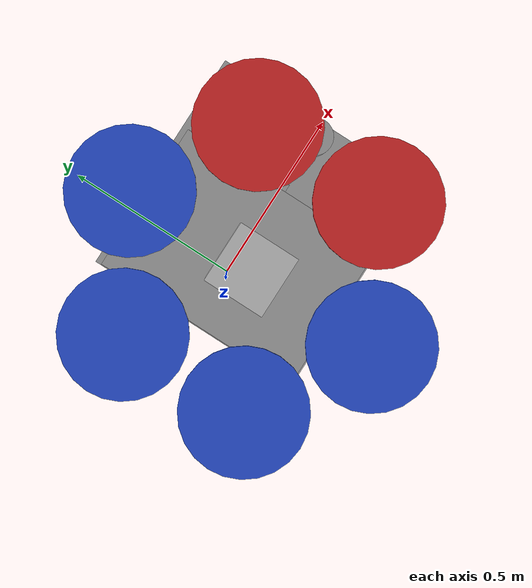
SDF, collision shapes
<?xml version="1.0" ?>
<sdf version="1.7">
  <model name="tether_marsupial">
    <self_collide>true</self_collide>

    <include>
      <uri>model://arco</uri>
      <pose>0.16 0 0.0 0 0 0</pose>
    </include>

    <include>
      <uri>model://firefly</uri>
      <pose>0.08 0 1.48 0 0 0</pose>
    </include>

  </model>
</sdf>

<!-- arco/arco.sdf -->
<sdf version='1.7'>

  <model name='arco'>

    <link name='base_link'>
      <inertial>
        <mass>20</mass>
        <inertia>
          <ixx>0.273333</ixx>
          <ixy>0</ixy>
          <ixz>0</ixz>
          <iyy>0.758667</iyy>
          <iyz>0</iyz>
          <izz>0.966667</izz>
        </inertia>
        <pose>0 0 0 0 -0 0</pose>
      </inertial>
      <self_collide>1</self_collide>
      <enable_wind>0</enable_wind>
      <kinematic>0</kinematic>
      <pose>0 0 0 0 -0 0</pose>
      <gravity>1</gravity>
      <visual name='visual'>
        <geometry>
          <box>
            <size>0.66 0.38 0.14</size>
          </box>
        </geometry>
        <material>
          <script>
            <name>Gazebo/Grey</name>
            <uri>file://media/materials/scripts/gazebo.material</uri>
          </script>
          <shader type='pixel'>
            <normal_map>__default__</normal_map>
          </shader>
          <ambient>1 1 1 1</ambient>
          <diffuse>0.7 0.7 0.7 1</diffuse>
          <specular>0.01 0.01 0.01 1</specular>
          <emissive>0 0 0 1</emissive>
        </material>
        <pose>0 0 0 0 -0 0</pose>
        <transparency>0</transparency>
        <cast_shadows>1</cast_shadows>
      </visual>
      <collision name='collision'>
        <laser_retro>0</laser_retro>
        <max_contacts>10</max_contacts>
        <pose>0 0 0 0 -0 0</pose>
        <geometry>
          <box>
            <size>0.66 0.38 0.14</size>
          </box>
        </geometry>
        <surface>
          <friction>
            <ode>
              <mu>1</mu>
              <mu2>1</mu2>
              <fdir1>0 0 0</fdir1>
              <slip1>0</slip1>
              <slip2>0</slip2>
            </ode>
            <torsional>
              <coefficient>1</coefficient>
              <patch_radius>0</patch_radius>
              <surface_radius>0</surface_radius>
              <use_patch_radius>1</use_patch_radius>
              <ode>
                <slip>0</slip>
              </ode>
            </torsional>
          </friction>
          <bounce>
            <restitution_coefficient>0</restitution_coefficient>
            <threshold>1e+06</threshold>
          </bounce>
          <contact>
            <collide_without_contact>0</collide_without_contact>
            <collide_without_contact_bitmask>1</collide_without_contact_bitmask>
            <collide_bitmask>1</collide_bitmask>
            <ode>
              <soft_cfm>0</soft_cfm>
              <soft_erp>0.2</soft_erp>
              <kp>1e+13</kp>
              <kd>1</kd>
              <max_vel>0.01</max_vel>
              <min_depth>0</min_depth>
            </ode>
            <bullet>
              <split_impulse>1</split_impulse>
              <split_impulse_penetration_threshold>-0.01</split_impulse_penetration_threshold>
              <soft_cfm>0</soft_cfm>
              <soft_erp>0.2</soft_erp>
              <kp>1e+13</kp>
              <kd>1</kd>
            </bullet>
          </contact>
        </surface>
      </collision>

      <collision name='imu_collision'>
        <pose>0.12 0 0.09 0 -0 0</pose>
        <geometry>
          <box>
            <size>0.031 0.031 0.01</size>
          </box>
        </geometry>
        <surface>
          <contact>
            <ode/>
          </contact>
          <friction>
            <ode/>
          </friction>
        </surface>
      </collision>
      <collision name='os1_sensor_collision'>
        <pose>0.2795 0 0.12 0 -0 0</pose>
        <geometry>
          <cylinder>
            <length>0.0717</length>
            <radius>0.0516</radius>
          </cylinder>
        </geometry>
      </collision>
      <visual name='imu_visual'>
        <pose>0.12 0 0.09 0 -0 0</pose>
        <geometry>
          <mesh>
            <scale>0.001 0.001 0.001</scale>
            <uri>model://arco/meshes/razor_imu/razor_imu.stl</uri>
          </mesh>
        </geometry>
        <material>
          <script>
            <name>Gazebo/Red</name>
            <uri>file://media/materials/scripts/gazebo.material</uri>
          </script>
        </material>
      </visual>
      <visual name='os1_sensor_base_link_1'>
        <pose>0.2795 0 0.08 0 -0 0</pose>
        <geometry>
          <mesh>
            <scale>1 1 1</scale>
            <uri>model://arco/meshes/VLP16/VLP16_base_1.dae</uri>
          </mesh>
        </geometry>
      </visual>
      <visual name='os1_sensor_base_link_visual_2'>
        <pose>0.2795 0 0.08 -0 0</pose>
        <geometry>
          <mesh>
            <scale>1 1 1</scale>
            <uri>model://arco/meshes/VLP16/VLP16_base_2.dae</uri>
          </mesh>
        </geometry>
      </visual>
      <visual name='os1_sensor_visual_3'>
        <pose>0.2795 0 0.08 0 -0 0</pose>
        <geometry>
          <mesh>
            <scale>1 1 1</scale>
            <uri>model://arco/meshes/VLP16/VLP16_scan.dae</uri>
          </mesh>
        </geometry>
      </visual>

      <sensor name='imu_sensor' type='imu'>
        <always_on>1</always_on>
        <update_rate>50</update_rate>
        <visualize>1</visualize>
        <topic>__default_topic__</topic>
        <pose>0.12 0 0.1428 0 -0 0</pose>
      </sensor>
      <sensor name='os1_sensor-VLP16' type='ray'>
        <visualize>0</visualize>
        <update_rate>10</update_rate>
        <ray>
          <scan>
            <horizontal>
              <samples>1875</samples>
              <resolution>1</resolution>
              <min_angle>-3.14159</min_angle>
              <max_angle>3.14159</max_angle>
            </horizontal>
            <vertical>
              <samples>16</samples>
              <resolution>1</resolution>
              <min_angle>-0.261799</min_angle>
              <max_angle>0.261799</max_angle>
            </vertical>
          </scan>
          <range>
            <min>0.3</min>
            <max>40</max>
            <resolution>0.001</resolution>
          </range>
          <noise>
            <type>gaussian</type>
            <mean>0</mean>
            <stddev>0</stddev>
          </noise>
        </ray>
        <pose>0.2795 0 0.1791 0 -0 0</pose>
      </sensor>
    </link>
    <link name='front_right'>
      <inertial>
        <mass>0.5</mass>
        <inertia>
          <ixx>0.00104176</ixx>
          <ixy>0</ixy>
          <ixz>0</ixz>
          <iyy>0.00104176</iyy>
          <iyz>0</iyz>
          <izz>0.001225</izz>
        </inertia>
        <pose>0 0 0 0 -0 0</pose>
      </inertial>
      <pose>0.21 0.247 -0.06 1.57 0 0</pose>
      <gravity>1</gravity>
      <self_collide>1</self_collide>
      <kinematic>0</kinematic>
      <enable_wind>0</enable_wind>
      <visual name='visual'>
        <pose>0 0 0 1.57 -0 0</pose>
        <geometry>
          <mesh>
            <scale>0.002 0.002 0.002</scale>
            <uri>model://arco/meshes/mecanum/mecanum_wheel_left.STL</uri>
          </mesh>
        </geometry>
        <material>
          <lighting>1</lighting>
          <script>
            <name>Gazebo/Orange</name>
            <uri>file://media/materials/scripts/gazebo.material</uri>
          </script>
          <shader type='pixel'>
            <normal_map>__default__</normal_map>
          </shader>
        </material>
        <transparency>0</transparency>
        <cast_shadows>1</cast_shadows>
      </visual>
      <collision name='collision'>
        <laser_retro>0</laser_retro>
        <max_contacts>10</max_contacts>
        <pose>0 0 0 0 -0 0</pose>
        <geometry>
          <cylinder>
            <radius>0.1015</radius>
            <length>0.07</length>
          </cylinder>
        </geometry>
        <surface>
          <friction>
            <ode>
              <mu>1</mu>
              <mu2>1</mu2>
              <fdir1>0 0 0</fdir1>
              <slip1>0</slip1>
              <slip2>0</slip2>
            </ode>
            <torsional>
              <coefficient>1</coefficient>
              <patch_radius>0</patch_radius>
              <surface_radius>0</surface_radius>
              <use_patch_radius>1</use_patch_radius>
              <ode>
                <slip>0</slip>
              </ode>
            </torsional>
          </friction>
          <bounce>
            <restitution_coefficient>0</restitution_coefficient>
            <threshold>1e+06</threshold>
          </bounce>
          <contact>
            <collide_without_contact>0</collide_without_contact>
            <collide_without_contact_bitmask>1</collide_without_contact_bitmask>
            <collide_bitmask>1</collide_bitmask>
            <ode>
              <soft_cfm>0</soft_cfm>
              <soft_erp>0.2</soft_erp>
              <kp>1e+13</kp>
              <kd>1</kd>
              <max_vel>0.01</max_vel>
              <min_depth>0</min_depth>
            </ode>
            <bullet>
              <split_impulse>1</split_impulse>
              <split_impulse_penetration_threshold>-0.01</split_impulse_penetration_threshold>
              <soft_cfm>0</soft_cfm>
              <soft_erp>0.2</soft_erp>
              <kp>1e+13</kp>
              <kd>1</kd>
            </bullet>
          </contact>
        </surface>
      </collision>
    </link>
    <link name='rear_right'>
      <inertial>
        <mass>0.5</mass>
        <inertia>
          <ixx>0.00104176</ixx>
          <ixy>0</ixy>
          <ixz>0</ixz>
          <iyy>0.00104176</iyy>
          <iyz>0</iyz>
          <izz>0.001225</izz>
        </inertia>
        <pose>0 0 0 0 -0 0</pose>
      </inertial>
      <pose>-0.21 0.247 -0.06 1.57 -0 0</pose>
      <gravity>1</gravity>
      <self_collide>1</self_collide>
      <kinematic>0</kinematic>
      <enable_wind>0</enable_wind>
      <visual name='visual'>
        <pose>0 0 0 1.57 -0 0</pose>
        <geometry>
         <mesh>
            <scale>0.002 0.002 0.002</scale>
            <uri>model://arco/meshes/mecanum/mecanum_wheel_left.STL</uri>
          </mesh>
        </geometry>
        <material>
          <lighting>1</lighting>
          <script>
            <name>Gazebo/Orange</name>
            <uri>file://media/materials/scripts/gazebo.material</uri>
          </script>
          <shader type='pixel'>
            <normal_map>__default__</normal_map>
          </shader>
        </material>
        <transparency>0</transparency>
        <cast_shadows>1</cast_shadows>
      </visual>
      <collision name='collision'>
        <laser_retro>0</laser_retro>
        <max_contacts>10</max_contacts>
        <pose>0 0 0 0 -0 0</pose>
        <geometry>
          <cylinder>
            <radius>0.1015</radius>
            <length>0.07</length>
          </cylinder>
        </geometry>
        <surface>
          <friction>
            <ode>
              <mu>1</mu>
              <mu2>1</mu2>
              <fdir1>0 0 0</fdir1>
              <slip1>0</slip1>
              <slip2>0</slip2>
            </ode>
            <torsional>
              <coefficient>1</coefficient>
              <patch_radius>0</patch_radius>
              <surface_radius>0</surface_radius>
              <use_patch_radius>1</use_patch_radius>
              <ode>
                <slip>0</slip>
              </ode>
            </torsional>
          </friction>
          <bounce>
            <restitution_coefficient>0</restitution_coefficient>
            <threshold>1e+06</threshold>
          </bounce>
          <contact>
            <collide_without_contact>0</collide_without_contact>
            <collide_without_contact_bitmask>1</collide_without_contact_bitmask>
            <collide_bitmask>1</collide_bitmask>
            <ode>
              <soft_cfm>0</soft_cfm>
              <soft_erp>0.2</soft_erp>
              <kp>1e+13</kp>
              <kd>1</kd>
              <max_vel>0.01</max_vel>
              <min_depth>0</min_depth>
            </ode>
            <bullet>
              <split_impulse>1</split_impulse>
              <split_impulse_penetration_threshold>-0.01</split_impulse_penetration_threshold>
              <soft_cfm>0</soft_cfm>
              <soft_erp>0.2</soft_erp>
              <kp>1e+13</kp>
              <kd>1</kd>
            </bullet>
          </contact>
        </surface>
      </collision>
    </link>
    <link name='front_left'>
      <inertial>
        <mass>0.5</mass>
        <inertia>
          <ixx>0.00104176</ixx>
          <ixy>0</ixy>
          <ixz>0</ixz>
          <iyy>0.00104176</iyy>
          <iyz>0</iyz>
          <izz>0.001225</izz>
        </inertia>
        <pose>0 0 0 0 -0 0</pose>
      </inertial>
      <pose>0.21 -0.247 -0.06 1.57 -0 0</pose>
      <gravity>1</gravity>
      <self_collide>1</self_collide>
      <kinematic>0</kinematic>
      <enable_wind>0</enable_wind>
      <visual name='visual'>
        <pose>0 0 0 1.57 -0 0</pose>
        <geometry>
          <mesh>
            <scale>0.002 0.002 0.002</scale>
            <uri>model://arco/meshes/mecanum/mecanum_wheel_left.STL</uri>
          </mesh>
        </geometry>
        <material>
          <lighting>1</lighting>
          <script>
            <name>Gazebo/Orange</name>
            <uri>file://media/materials/scripts/gazebo.material</uri>
          </script>
          <shader type='pixel'>
            <normal_map>__default__</normal_map>
          </shader>
        </material>
        <transparency>0</transparency>
        <cast_shadows>1</cast_shadows>
      </visual>
      <collision name='collision'>
        <laser_retro>0</laser_retro>
        <max_contacts>10</max_contacts>
        <pose>0 0 0 0 -0 0</pose>
        <geometry>
          <cylinder>
            <radius>0.1015</radius>
            <length>0.07</length>
          </cylinder>
        </geometry>
        <surface>
          <friction>
            <ode>
              <mu>1</mu>
              <mu2>1</mu2>
              <fdir1>0 0 0</fdir1>
              <slip1>0</slip1>
              <slip2>0</slip2>
            </ode>
            <torsional>
              <coefficient>1</coefficient>
              <patch_radius>0</patch_radius>
              <surface_radius>0</surface_radius>
              <use_patch_radius>1</use_patch_radius>
              <ode>
                <slip>0</slip>
              </ode>
            </torsional>
          </friction>
          <bounce>
            <restitution_coefficient>0</restitution_coefficient>
            <threshold>1e+06</threshold>
          </bounce>
          <contact>
            <collide_without_contact>0</collide_without_contact>
            <collide_without_contact_bitmask>1</collide_without_contact_bitmask>
            <collide_bitmask>1</collide_bitmask>
            <ode>
              <soft_cfm>0</soft_cfm>
              <soft_erp>0.2</soft_erp>
              <kp>1e+13</kp>
              <kd>1</kd>
              <max_vel>0.01</max_vel>
              <min_depth>0</min_depth>
            </ode>
            <bullet>
              <split_impulse>1</split_impulse>
              <split_impulse_penetration_threshold>-0.01</split_impulse_penetration_threshold>
              <soft_cfm>0</soft_cfm>
              <soft_erp>0.2</soft_erp>
              <kp>1e+13</kp>
              <kd>1</kd>
            </bullet>
          </contact>
        </surface>
      </collision>
    </link>
    <link name='rear_left'>
      <inertial>
        <mass>0.5</mass>
        <inertia>
          <ixx>0.00104176</ixx>
          <ixy>0</ixy>
          <ixz>0</ixz>
          <iyy>0.00104176</iyy>
          <iyz>0</iyz>
          <izz>0.001225</izz>
        </inertia>
        <pose>0 0 0 1.57 -0 0</pose>
      </inertial>
      <pose>-0.21 -0.247 -0.06 1.57 -0 0</pose>
      <gravity>1</gravity>
      <self_collide>1</self_collide>
      <kinematic>0</kinematic>
      <enable_wind>0</enable_wind>
      <visual name='visual'>
        <pose>0 0 0 1.57 -0 0</pose>
        <geometry>
          <mesh>
            <scale>0.002 0.002 0.002</scale>
            <uri>model://arco/meshes/mecanum/mecanum_wheel_left.STL</uri>
          </mesh>
        </geometry>
        <material>
          <lighting>1</lighting>
          <script>
            <name>Gazebo/Orange</name>
            <uri>file://media/materials/scripts/gazebo.material</uri>
          </script>
          <shader type='pixel'>
            <normal_map>__default__</normal_map>
          </shader>
        </material>
        <transparency>0</transparency>
        <cast_shadows>1</cast_shadows>
      </visual>
      <collision name='collision'>
        <laser_retro>0</laser_retro>
        <max_contacts>10</max_contacts>
        <pose>0 0 0 0 -0 0</pose>
        <geometry>
          <cylinder>
            <radius>0.1015</radius>
            <length>0.07</length>
          </cylinder>
        </geometry>
        <surface>
          <friction>
            <ode>
              <mu>1</mu>
              <mu2>1</mu2>
              <fdir1>0 0 0</fdir1>
              <slip1>0</slip1>
              <slip2>0</slip2>
            </ode>
            <torsional>
              <coefficient>1</coefficient>
              <patch_radius>0</patch_radius>
              <surface_radius>0</surface_radius>
              <use_patch_radius>1</use_patch_radius>
              <ode>
                <slip>0</slip>
              </ode>
            </torsional>
          </friction>
          <bounce>
            <restitution_coefficient>0</restitution_coefficient>
            <threshold>1e+06</threshold>
          </bounce>
          <contact>
            <collide_without_contact>0</collide_without_contact>
            <collide_without_contact_bitmask>1</collide_without_contact_bitmask>
            <collide_bitmask>1</collide_bitmask>
            <ode>
              <soft_cfm>0</soft_cfm>
              <soft_erp>0.2</soft_erp>
              <kp>1e+13</kp>
              <kd>1</kd>
              <max_vel>0.01</max_vel>
              <min_depth>0</min_depth>
            </ode>
            <bullet>
              <split_impulse>1</split_impulse>
              <split_impulse_penetration_threshold>-0.01</split_impulse_penetration_threshold>
              <soft_cfm>0</soft_cfm>
              <soft_erp>0.2</soft_erp>
              <kp>1e+13</kp>
              <kd>1</kd>
            </bullet>
          </contact>
        </surface>
      </collision>
    </link>
    <link name='base_cover'>
      <inertial>
        <mass>1</mass>
        <inertia>
          <ixx>0.0341417</ixx>
          <ixy>0</ixy>
          <ixz>0</ixz>
          <iyy>0.0363083</iyy>
          <iyz>0</iyz>
          <izz>0.0704333</izz>
        </inertia>
        <pose>0 0 0 0 -0 0</pose>
      </inertial>
      <self_collide>1</self_collide>
      <enable_wind>0</enable_wind>
      <kinematic>0</kinematic>
      <pose>-0 0 0.075 0 -0 0</pose>
      <gravity>1</gravity>
      <visual name='visual'>
        <geometry>
          <box>
            <size>0.66 0.64 0.01</size>
          </box>
        </geometry>
        <material>
          <script>
            <name>Gazebo/Gray</name>
            <uri>file://media/materials/scripts/gazebo.material</uri>
          </script>
          <shader type='pixel'>
            <normal_map>__default__</normal_map>
          </shader>
          <ambient>1 1 1 1</ambient>
          <diffuse>0.7 0.7 0.7 1</diffuse>
          <specular>0.01 0.01 0.01 1</specular>
          <emissive>0 0 0 1</emissive>
        </material>
        <pose>0 0 0 0 -0 0</pose>
        <transparency>0</transparency>
        <cast_shadows>1</cast_shadows>
      </visual>
      <collision name='collision'>
        <laser_retro>0</laser_retro>
        <max_contacts>10</max_contacts>
        <pose>0 0 0 0 -0 0</pose>
        <geometry>
          <box>
            <size>0.66 0.64 0.01</size>
          </box>
        </geometry>
        <surface>
          <friction>
            <ode>
              <mu>1</mu>
              <mu2>1</mu2>
              <fdir1>0 0 0</fdir1>
              <slip1>0</slip1>
              <slip2>0</slip2>
            </ode>
            <torsional>
              <coefficient>1</coefficient>
              <patch_radius>0</patch_radius>
              <surface_radius>0</surface_radius>
              <use_patch_radius>1</use_patch_radius>
              <ode>
                <slip>0</slip>
              </ode>
            </torsional>
          </friction>
          <bounce>
            <restitution_coefficient>0</restitution_coefficient>
            <threshold>1e+06</threshold>
          </bounce>
          <contact>
            <collide_without_contact>0</collide_without_contact>
            <collide_without_contact_bitmask>1</collide_without_contact_bitmask>
            <collide_bitmask>1</collide_bitmask>
            <ode>
              <soft_cfm>0</soft_cfm>
              <soft_erp>0.2</soft_erp>
              <kp>1e+13</kp>
              <kd>1</kd>
              <max_vel>0.01</max_vel>
              <min_depth>0</min_depth>
            </ode>
            <bullet>
              <split_impulse>1</split_impulse>
              <split_impulse_penetration_threshold>-0.01</split_impulse_penetration_threshold>
              <soft_cfm>0</soft_cfm>
              <soft_erp>0.2</soft_erp>
              <kp>1e+13</kp>
              <kd>1</kd>
            </bullet>
          </contact>
        </surface>
      </collision>
    </link>
    <link name='base_platform'>
      <inertial>
        <mass>10</mass>
        <inertia>
          <ixx>0.336333</ixx>
          <ixy>0</ixy>
          <ixz>0</ixz>
          <iyy>0.208333</iyy>
          <iyz>0</iyz>
          <izz>0.394667</izz>
        </inertia>
        <pose>0 0 0 0 -0 0</pose>
      </inertial>
      <self_collide>1</self_collide>
      <enable_wind>0</enable_wind>
      <kinematic>0</kinematic>
      <pose>-0.1 -0 0.23 0 -0 0</pose>
      <gravity>1</gravity>
      <visual name='visual'>
        <geometry>
          <box>
            <size>0.4 0.56 0.3</size>
          </box>
        </geometry>
        <material>
          <script>
            <name>Gazebo/Gray</name>
            <uri>file://media/materials/scripts/gazebo.material</uri>
          </script>
          <shader type='pixel'>
            <normal_map>__default__</normal_map>
          </shader>
          <ambient>0.5 0.5 0.5 1</ambient>
          <diffuse>0.7 0.7 0.7 1</diffuse>
          <specular>0.01 0.01 0.01 1</specular>
          <emissive>0 0 0 1</emissive>
        </material>
        <pose>0 0 0 0 -0 0</pose>
        <transparency>0</transparency>
        <cast_shadows>1</cast_shadows>
      </visual>
      <collision name='collision'>
        <laser_retro>0</laser_retro>
        <max_contacts>10</max_contacts>
        <pose>0 0 0 0 -0 0</pose>
        <geometry>
          <box>
            <size>0.4 0.56 0.3</size>
          </box>
        </geometry>
        <surface>
          <friction>
            <ode>
              <mu>1</mu>
              <mu2>1</mu2>
              <fdir1>0 0 0</fdir1>
              <slip1>0</slip1>
              <slip2>0</slip2>
            </ode>
            <torsional>
              <coefficient>1</coefficient>
              <patch_radius>0</patch_radius>
              <surface_radius>0</surface_radius>
              <use_patch_radius>1</use_patch_radius>
              <ode>
                <slip>0</slip>
              </ode>
            </torsional>
          </friction>
          <bounce>
            <restitution_coefficient>0</restitution_coefficient>
            <threshold>1e+06</threshold>
          </bounce>
          <contact>
            <collide_without_contact>0</collide_without_contact>
            <collide_without_contact_bitmask>1</collide_without_contact_bitmask>
            <collide_bitmask>1</collide_bitmask>
            <ode>
              <soft_cfm>0</soft_cfm>
              <soft_erp>0.2</soft_erp>
              <kp>1e+13</kp>
              <kd>1</kd>
              <max_vel>0.01</max_vel>
              <min_depth>0</min_depth>
            </ode>
            <bullet>
              <split_impulse>1</split_impulse>
              <split_impulse_penetration_threshold>-0.01</split_impulse_penetration_threshold>
              <soft_cfm>0</soft_cfm>
              <soft_erp>0.2</soft_erp>
              <kp>1e+13</kp>
              <kd>1</kd>
            </bullet>
          </contact>
        </surface>
      </collision>
    </link>
    <joint name='link_JOINT_2' type='fixed'>
      <parent>base_link</parent>
      <child>base_cover</child>
      <pose>0 0 0 0 -0 0</pose>
      <physics>
        <ode>
          <limit>
            <cfm>0</cfm>
            <erp>0.2</erp>
          </limit>
          <suspension>
            <cfm>0</cfm>
            <erp>0.2</erp>
          </suspension>
        </ode>
      </physics>
    </joint>
    <joint name='link_JOINT_3' type='fixed'>
      <parent>base_cover</parent>
      <child>base_platform</child>
      <pose>0 0 0 0 -0 0</pose>
      <physics>
        <ode>
          <limit>
            <cfm>0</cfm>
            <erp>0.2</erp>
          </limit>
          <suspension>
            <cfm>0</cfm>
            <erp>0.2</erp>
          </suspension>
        </ode>
      </physics>
    </joint>
    <joint name='link_JOINT_4' type='revolute'>
      <parent>base_link</parent>
      <child>front_right</child>
      <pose>0 0 0.035 0 -0 0</pose>
      <axis>
        <xyz>0 0 1</xyz>
        <limit>
          <lower>-1.79769e+308</lower>
          <upper>1.79769e+308</upper>
          <effort>-1</effort>
          <velocity>-1</velocity>
        </limit>
        <dynamics>
          <spring_reference>0</spring_reference>
          <spring_stiffness>0</spring_stiffness>
          <damping>0</damping>
        </dynamics>
      </axis>
      <physics>
        <ode>
          <limit>
            <cfm>0</cfm>
            <erp>0.2</erp>
          </limit>
          <suspension>
            <cfm>0</cfm>
            <erp>0.2</erp>
          </suspension>
        </ode>
      </physics>
    </joint>
    <joint name='link_JOINT_5' type='revolute'>
      <parent>base_link</parent>
      <child>rear_right</child>
      <pose>0 0 0.035 0 -0 0</pose>
      <axis>
        <xyz>0 0 1</xyz>
        <limit>
          <lower>-1.79769e+308</lower>
          <upper>1.79769e+308</upper>
          <effort>-1</effort>
          <velocity>-1</velocity>
        </limit>
        <dynamics>
          <spring_reference>0</spring_reference>
          <spring_stiffness>0</spring_stiffness>
          <damping>0</damping>
        </dynamics>
      </axis>
      <physics>
        <ode>
          <limit>
            <cfm>0</cfm>
            <erp>0.2</erp>
          </limit>
          <suspension>
            <cfm>0</cfm>
            <erp>0.2</erp>
          </suspension>
        </ode>
      </physics>
    </joint>
    <joint name='link_JOINT_6' type='revolute'>
      <parent>base_link</parent>
      <child>front_left</child>
      <pose>0 0 -0.035 0 -0 0</pose>
      <axis>
        <xyz>0 0 1</xyz>
        <limit>
          <lower>-1.79769e+308</lower>
          <upper>1.79769e+308</upper>
          <effort>-1</effort>
          <velocity>-1</velocity>
        </limit>
        <dynamics>
          <spring_reference>0</spring_reference>
          <spring_stiffness>0</spring_stiffness>
          <damping>0</damping>
        </dynamics>
      </axis>
      <physics>
        <ode>
          <limit>
            <cfm>0</cfm>
            <erp>0.2</erp>
          </limit>
          <suspension>
            <cfm>0</cfm>
            <erp>0.2</erp>
          </suspension>
        </ode>
      </physics>
    </joint>
    <joint name='link_JOINT_7' type='revolute'>
      <parent>base_link</parent>
      <child>rear_left</child>
      <pose>0 0 -0.035 0 -0 0</pose>
      <axis>
        <xyz>0 0 1</xyz>
        <limit>
          <lower>-1.79769e+308</lower>
          <upper>1.79769e+308</upper>
          <effort>-1</effort>
          <velocity>-1</velocity>
        </limit>
        <dynamics>
          <spring_reference>0</spring_reference>
          <spring_stiffness>0</spring_stiffness>
          <damping>0</damping>
        </dynamics>
      </axis>
      <physics>
        <ode>
          <limit>
            <cfm>0</cfm>
            <erp>0.2</erp>
          </limit>
          <suspension>
            <cfm>0</cfm>
            <erp>0.2</erp>
          </suspension>
        </ode>
      </physics>
    </joint>

    <static>0</static>
    <allow_auto_disable>1</allow_auto_disable>

  </model>
</sdf>

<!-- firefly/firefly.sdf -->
<sdf version='1.7'>
  <model name='firefly'>
    <link name='firefly/base_link'>
      <inertial>
        <pose>0 0 -0.000242 0 -0 0</pose>
        <mass>1.52</mass>
        <inertia>
          <ixx>0.0347717</ixx>
          <ixy>0</ixy>
          <ixz>0</ixz>
          <iyy>0.0459083</iyy>
          <iyz>0</iyz>
          <izz>0.097702</izz>
        </inertia>
      </inertial>
      <collision name='firefly/base_link_inertia_collision'>
        <pose>0 0 0 0 -0 0</pose>
        <geometry>
          <box>
            <size>0.1 0.1 0.16</size>
          </box>
        </geometry>
      </collision>
      <visual name='firefly/base_link_inertia_visual'>
        <pose>0 0 0 0 -0 0</pose>
        <geometry>
          <mesh>
            <scale>1 1 1</scale>
            <uri>model://firefly/meshes//firefly.dae</uri>
          </mesh>
        </geometry>
      </visual>
      <sensor name='laser_scan' type='ray'>
        <visualize>0</visualize>
        <update_rate>10</update_rate>
        <ray>
          <scan>
            <horizontal>
              <samples>512</samples>
              <resolution>1</resolution>
              <min_angle>-3.14159</min_angle>
              <max_angle>3.14159</max_angle>
            </horizontal>
            <vertical>
              <samples>16</samples>
              <resolution>1</resolution>
              <min_angle>-0.289725</min_angle>
              <max_angle>0.289725</max_angle>
            </vertical>
          </scan>
          <range>
            <min>0.8</min>
            <max>120</max>
            <resolution>0.012</resolution>
          </range>
          <noise>
            <type>gaussian</type>
            <mean>0</mean>
            <stddev>0</stddev>
          </noise>
        </ray>
        <plugin name='fireflygazebo_ros_laser_controller' filename='libgazebo_ros_velodyne_laser.so'>
          <topicName>/firefly/os1_cloud_node/points</topicName>
          <frameName>/firefly/os1_sensor</frameName>
          <min_range>0.8</min_range>
          <max_range>40.0</max_range>
          <gaussianNoise>0.03</gaussianNoise>
        </plugin>
        <pose>0 0 -0.036785 0 -0 0</pose>
      </sensor>
    </link>
    <joint name='firefly/imu_joint' type='revolute'>
      <pose relative_to='firefly/base_link'>0 0 0 0 -0 0</pose>
      <parent>firefly/base_link</parent>
      <child>firefly/imu_link</child>
      <axis>
        <xyz>1 0 0</xyz>
        <limit>
          <lower>0</lower>
          <upper>0</upper>
          <effort>0</effort>
          <velocity>0</velocity>
        </limit>
        <dynamics>
          <spring_reference>0</spring_reference>
          <spring_stiffness>0</spring_stiffness>
        </dynamics>
      </axis>
    </joint>
    <link name='firefly/imu_link'>
      <pose relative_to='firefly/imu_joint'>0 0 0 0 -0 0</pose>
      <inertial>
        <pose>0 0 0 0 -0 0</pose>
        <mass>0.015</mass>
        <inertia>
          <ixx>1e-05</ixx>
          <ixy>0</ixy>
          <ixz>0</ixz>
          <iyy>1e-05</iyy>
          <iyz>0</iyz>
          <izz>1e-05</izz>
        </inertia>
      </inertial>
    </link>
    <joint name='firefly/odometry_sensor1_joint' type='revolute'>
      <pose relative_to='firefly/base_link'>0 0 0 0 -0 0</pose>
      <parent>firefly/base_link</parent>
      <child>firefly/odometry_sensor1_link</child>
      <axis>
        <xyz>1 0 0</xyz>
        <limit>
          <lower>0</lower>
          <upper>0</upper>
          <effort>0</effort>
          <velocity>0</velocity>
        </limit>
        <dynamics>
          <spring_reference>0</spring_reference>
          <spring_stiffness>0</spring_stiffness>
        </dynamics>
      </axis>
    </joint>
    <link name='firefly/odometry_sensor1_link'>
      <pose relative_to='firefly/odometry_sensor1_joint'>0 0 0 0 -0 0</pose>
      <inertial>
        <pose>0 0 0 0 -0 0</pose>
        <mass>1e-05</mass>
        <inertia>
          <ixx>1e-05</ixx>
          <ixy>0</ixy>
          <ixz>0</ixz>
          <iyy>1e-05</iyy>
          <iyz>0</iyz>
          <izz>1e-05</izz>
        </inertia>
      </inertial>
    </link>
    <joint name='firefly/rotor_0_joint' type='revolute'>
      <pose relative_to='firefly/base_link'>0.186195 0.1075 0.037 0 -0 0</pose>
      <parent>firefly/base_link</parent>
      <child>firefly/rotor_0</child>
      <axis>
        <xyz>0 0 1</xyz>
        <limit>
          <lower>-1e+16</lower>
          <upper>1e+16</upper>
        </limit>
        <dynamics>
          <spring_reference>0</spring_reference>
          <spring_stiffness>0</spring_stiffness>
        </dynamics>
      </axis>
    </joint>
    <link name='firefly/rotor_0'>
      <pose relative_to='firefly/rotor_0_joint'>0 0 0 0 -0 0</pose>
      <inertial>
        <pose>0 0 0 0 -0 0</pose>
        <mass>0.005</mass>
        <inertia>
          <ixx>9.75e-07</ixx>
          <ixy>0</ixy>
          <ixz>0</ixz>
          <iyy>4.17041e-05</iyy>
          <iyz>0</iyz>
          <izz>4.26041e-05</izz>
        </inertia>
      </inertial>
      <collision name='firefly/rotor_0_collision'>
        <pose>0 0 0 0 -0 0</pose>
        <geometry>
          <cylinder>
            <length>0.005</length>
            <radius>0.1</radius>
          </cylinder>
        </geometry>
        <surface>
          <contact>
            <ode/>
          </contact>
          <friction>
            <ode/>
          </friction>
        </surface>
      </collision>
      <visual name='firefly/rotor_0_visual'>
        <pose>0 0 0 0 -0 0</pose>
        <geometry>
          <mesh>
            <scale>0.1 0.1 0.1</scale>
            <uri>model://firefly/meshes//propeller_ccw.dae</uri>
          </mesh>
        </geometry>
        <material>
          <script>
            <name>Gazebo/Red</name>
            <uri>file://media/materials/scripts/gazebo.material</uri>
          </script>
        </material>
      </visual>
    </link>
    <joint name='firefly/rotor_1_joint' type='revolute'>
      <pose relative_to='firefly/base_link'>0 0.215 0.037 0 -0 0</pose>
      <parent>firefly/base_link</parent>
      <child>firefly/rotor_1</child>
      <axis>
        <xyz>0 0 1</xyz>
        <limit>
          <lower>-1e+16</lower>
          <upper>1e+16</upper>
        </limit>
        <dynamics>
          <spring_reference>0</spring_reference>
          <spring_stiffness>0</spring_stiffness>
        </dynamics>
      </axis>
    </joint>
    <link name='firefly/rotor_1'>
      <pose relative_to='firefly/rotor_1_joint'>0 0 0 0 -0 0</pose>
      <inertial>
        <pose>0 0 0 0 -0 0</pose>
        <mass>0.005</mass>
        <inertia>
          <ixx>9.75e-07</ixx>
          <ixy>0</ixy>
          <ixz>0</ixz>
          <iyy>4.17041e-05</iyy>
          <iyz>0</iyz>
          <izz>4.26041e-05</izz>
        </inertia>
      </inertial>
      <collision name='firefly/rotor_1_collision'>
        <pose>0 0 0 0 -0 0</pose>
        <geometry>
          <cylinder>
            <length>0.005</length>
            <radius>0.1</radius>
          </cylinder>
        </geometry>
        <surface>
          <contact>
            <ode/>
          </contact>
          <friction>
            <ode/>
          </friction>
        </surface>
      </collision>
      <visual name='firefly/rotor_1_visual'>
        <pose>0 0 0 0 -0 0</pose>
        <geometry>
          <mesh>
            <scale>0.1 0.1 0.1</scale>
            <uri>model://firefly/meshes//propeller_cw.dae</uri>
          </mesh>
        </geometry>
        <material>
          <script>
            <name>Gazebo/Blue</name>
            <uri>file://media/materials/scripts/gazebo.material</uri>
          </script>
        </material>
      </visual>
    </link>
    <joint name='firefly/rotor_2_joint' type='revolute'>
      <pose relative_to='firefly/base_link'>-0.186195 0.1075 0.037 0 -0 0</pose>
      <parent>firefly/base_link</parent>
      <child>firefly/rotor_2</child>
      <axis>
        <xyz>0 0 1</xyz>
        <limit>
          <lower>-1e+16</lower>
          <upper>1e+16</upper>
        </limit>
        <dynamics>
          <spring_reference>0</spring_reference>
          <spring_stiffness>0</spring_stiffness>
        </dynamics>
      </axis>
    </joint>
    <link name='firefly/rotor_2'>
      <pose relative_to='firefly/rotor_2_joint'>0 0 0 0 -0 0</pose>
      <inertial>
        <pose>0 0 0 0 -0 0</pose>
        <mass>0.005</mass>
        <inertia>
          <ixx>9.75e-07</ixx>
          <ixy>0</ixy>
          <ixz>0</ixz>
          <iyy>4.17041e-05</iyy>
          <iyz>0</iyz>
          <izz>4.26041e-05</izz>
        </inertia>
      </inertial>
      <collision name='firefly/rotor_2_collision'>
        <pose>0 0 0 0 -0 0</pose>
        <geometry>
          <cylinder>
            <length>0.005</length>
            <radius>0.1</radius>
          </cylinder>
        </geometry>
        <surface>
          <contact>
            <ode/>
          </contact>
          <friction>
            <ode/>
          </friction>
        </surface>
      </collision>
      <visual name='firefly/rotor_2_visual'>
        <pose>0 0 0 0 -0 0</pose>
        <geometry>
          <mesh>
            <scale>0.1 0.1 0.1</scale>
            <uri>model://firefly/meshes//propeller_ccw.dae</uri>
          </mesh>
        </geometry>
        <material>
          <script>
            <name>Gazebo/Blue</name>
            <uri>file://media/materials/scripts/gazebo.material</uri>
          </script>
        </material>
      </visual>
    </link>
    <joint name='firefly/rotor_3_joint' type='revolute'>
      <pose relative_to='firefly/base_link'>-0.186195 -0.1075 0.037 0 -0 0</pose>
      <parent>firefly/base_link</parent>
      <child>firefly/rotor_3</child>
      <axis>
        <xyz>0 0 1</xyz>
        <limit>
          <lower>-1e+16</lower>
          <upper>1e+16</upper>
        </limit>
        <dynamics>
          <spring_reference>0</spring_reference>
          <spring_stiffness>0</spring_stiffness>
        </dynamics>
      </axis>
    </joint>
    <link name='firefly/rotor_3'>
      <pose relative_to='firefly/rotor_3_joint'>0 0 0 0 -0 0</pose>
      <inertial>
        <pose>0 0 0 0 -0 0</pose>
        <mass>0.005</mass>
        <inertia>
          <ixx>9.75e-07</ixx>
          <ixy>0</ixy>
          <ixz>0</ixz>
          <iyy>4.17041e-05</iyy>
          <iyz>0</iyz>
          <izz>4.26041e-05</izz>
        </inertia>
      </inertial>
      <collision name='firefly/rotor_3_collision'>
        <pose>0 0 0 0 -0 0</pose>
        <geometry>
          <cylinder>
            <length>0.005</length>
            <radius>0.1</radius>
          </cylinder>
        </geometry>
        <surface>
          <contact>
            <ode/>
          </contact>
          <friction>
            <ode/>
          </friction>
        </surface>
      </collision>
      <visual name='firefly/rotor_3_visual'>
        <pose>0 0 0 0 -0 0</pose>
        <geometry>
          <mesh>
            <scale>0.1 0.1 0.1</scale>
            <uri>model://firefly/meshes//propeller_cw.dae</uri>
          </mesh>
        </geometry>
        <material>
          <script>
            <name>Gazebo/Blue</name>
            <uri>file://media/materials/scripts/gazebo.material</uri>
          </script>
        </material>
      </visual>
    </link>
    <joint name='firefly/rotor_4_joint' type='revolute'>
      <pose relative_to='firefly/base_link'>0 -0.215 0.037 0 -0 0</pose>
      <parent>firefly/base_link</parent>
      <child>firefly/rotor_4</child>
      <axis>
        <xyz>0 0 1</xyz>
        <limit>
          <lower>-1e+16</lower>
          <upper>1e+16</upper>
        </limit>
        <dynamics>
          <spring_reference>0</spring_reference>
          <spring_stiffness>0</spring_stiffness>
        </dynamics>
      </axis>
    </joint>
    <link name='firefly/rotor_4'>
      <pose relative_to='firefly/rotor_4_joint'>0 0 0 0 -0 0</pose>
      <inertial>
        <pose>0 0 0 0 -0 0</pose>
        <mass>0.005</mass>
        <inertia>
          <ixx>9.75e-07</ixx>
          <ixy>0</ixy>
          <ixz>0</ixz>
          <iyy>4.17041e-05</iyy>
          <iyz>0</iyz>
          <izz>4.26041e-05</izz>
        </inertia>
      </inertial>
      <collision name='firefly/rotor_4_collision'>
        <pose>0 0 0 0 -0 0</pose>
        <geometry>
          <cylinder>
            <length>0.005</length>
            <radius>0.1</radius>
          </cylinder>
        </geometry>
        <surface>
          <contact>
            <ode/>
          </contact>
          <friction>
            <ode/>
          </friction>
        </surface>
      </collision>
      <visual name='firefly/rotor_4_visual'>
        <pose>0 0 0 0 -0 0</pose>
        <geometry>
          <mesh>
            <scale>0.1 0.1 0.1</scale>
            <uri>model://firefly/meshes//propeller_ccw.dae</uri>
          </mesh>
        </geometry>
        <material>
          <script>
            <name>Gazebo/Blue</name>
            <uri>file://media/materials/scripts/gazebo.material</uri>
          </script>
        </material>
      </visual>
    </link>
    <joint name='firefly/rotor_5_joint' type='revolute'>
      <pose relative_to='firefly/base_link'>0.186195 -0.1075 0.037 0 -0 0</pose>
      <parent>firefly/base_link</parent>
      <child>firefly/rotor_5</child>
      <axis>
        <xyz>0 0 1</xyz>
        <limit>
          <lower>-1e+16</lower>
          <upper>1e+16</upper>
        </limit>
        <dynamics>
          <spring_reference>0</spring_reference>
          <spring_stiffness>0</spring_stiffness>
        </dynamics>
      </axis>
    </joint>
    <link name='firefly/rotor_5'>
      <pose relative_to='firefly/rotor_5_joint'>0 0 0 0 -0 0</pose>
      <inertial>
        <pose>0 0 0 0 -0 0</pose>
        <mass>0.005</mass>
        <inertia>
          <ixx>9.75e-07</ixx>
          <ixy>0</ixy>
          <ixz>0</ixz>
          <iyy>4.17041e-05</iyy>
          <iyz>0</iyz>
          <izz>4.26041e-05</izz>
        </inertia>
      </inertial>
      <collision name='firefly/rotor_5_collision'>
        <pose>0 0 0 0 -0 0</pose>
        <geometry>
          <cylinder>
            <length>0.005</length>
            <radius>0.1</radius>
          </cylinder>
        </geometry>
        <surface>
          <contact>
            <ode/>
          </contact>
          <friction>
            <ode/>
          </friction>
        </surface>
      </collision>
      <visual name='firefly/rotor_5_visual'>
        <pose>0 0 0 0 -0 0</pose>
        <geometry>
          <mesh>
            <scale>0.1 0.1 0.1</scale>
            <uri>model://firefly/meshes//propeller_cw.dae</uri>
          </mesh>
        </geometry>
        <material>
          <script>
            <name>Gazebo/Red</name>
            <uri>file://media/materials/scripts/gazebo.material</uri>
          </script>
        </material>
      </visual>
    </link>
    <plugin name='multirotor_base_plugin' filename='librotors_gazebo_multirotor_base_plugin.so'>
      <robotNamespace>firefly</robotNamespace>
      <linkName>firefly/base_link</linkName>
      <rotorVelocitySlowdownSim>10</rotorVelocitySlowdownSim>
    </plugin>
    <plugin name='firefly_front_left_motor_model' filename='librotors_gazebo_motor_model.so'>
      <robotNamespace>firefly</robotNamespace>
      <jointName>firefly/rotor_0_joint</jointName>
      <linkName>firefly/rotor_0</linkName>
      <turningDirection>ccw</turningDirection>
      <timeConstantUp>0.0125</timeConstantUp>
      <timeConstantDown>0.025</timeConstantDown>
      <maxRotVelocity>838</maxRotVelocity>
      <motorConstant>8.54858e-06</motorConstant>
      <momentConstant>0.016</momentConstant>
      <commandSubTopic>gazebo/command/motor_speed</commandSubTopic>
      <motorNumber>0</motorNumber>
      <rotorDragCoefficient>8.06428e-05</rotorDragCoefficient>
      <rollingMomentCoefficient>1e-06</rollingMomentCoefficient>
      <motorSpeedPubTopic>motor_speed/0</motorSpeedPubTopic>
      <rotorVelocitySlowdownSim>10</rotorVelocitySlowdownSim>
    </plugin>
    <plugin name='firefly_left_motor_model' filename='librotors_gazebo_motor_model.so'>
      <robotNamespace>firefly</robotNamespace>
      <jointName>firefly/rotor_1_joint</jointName>
      <linkName>firefly/rotor_1</linkName>
      <turningDirection>cw</turningDirection>
      <timeConstantUp>0.0125</timeConstantUp>
      <timeConstantDown>0.025</timeConstantDown>
      <maxRotVelocity>838</maxRotVelocity>
      <motorConstant>8.54858e-06</motorConstant>
      <momentConstant>0.016</momentConstant>
      <commandSubTopic>gazebo/command/motor_speed</commandSubTopic>
      <motorNumber>1</motorNumber>
      <rotorDragCoefficient>8.06428e-05</rotorDragCoefficient>
      <rollingMomentCoefficient>1e-06</rollingMomentCoefficient>
      <motorSpeedPubTopic>motor_speed/1</motorSpeedPubTopic>
      <rotorVelocitySlowdownSim>10</rotorVelocitySlowdownSim>
    </plugin>
    <plugin name='firefly_back_left_motor_model' filename='librotors_gazebo_motor_model.so'>
      <robotNamespace>firefly</robotNamespace>
      <jointName>firefly/rotor_2_joint</jointName>
      <linkName>firefly/rotor_2</linkName>
      <turningDirection>ccw</turningDirection>
      <timeConstantUp>0.0125</timeConstantUp>
      <timeConstantDown>0.025</timeConstantDown>
      <maxRotVelocity>838</maxRotVelocity>
      <motorConstant>8.54858e-06</motorConstant>
      <momentConstant>0.016</momentConstant>
      <commandSubTopic>gazebo/command/motor_speed</commandSubTopic>
      <motorNumber>2</motorNumber>
      <rotorDragCoefficient>8.06428e-05</rotorDragCoefficient>
      <rollingMomentCoefficient>1e-06</rollingMomentCoefficient>
      <motorSpeedPubTopic>motor_speed/2</motorSpeedPubTopic>
      <rotorVelocitySlowdownSim>10</rotorVelocitySlowdownSim>
    </plugin>
    <plugin name='firefly_back_right_motor_model' filename='librotors_gazebo_motor_model.so'>
      <robotNamespace>firefly</robotNamespace>
      <jointName>firefly/rotor_3_joint</jointName>
      <linkName>firefly/rotor_3</linkName>
      <turningDirection>cw</turningDirection>
      <timeConstantUp>0.0125</timeConstantUp>
      <timeConstantDown>0.025</timeConstantDown>
      <maxRotVelocity>838</maxRotVelocity>
      <motorConstant>8.54858e-06</motorConstant>
      <momentConstant>0.016</momentConstant>
      <commandSubTopic>gazebo/command/motor_speed</commandSubTopic>
      <motorNumber>3</motorNumber>
      <rotorDragCoefficient>8.06428e-05</rotorDragCoefficient>
      <rollingMomentCoefficient>1e-06</rollingMomentCoefficient>
      <motorSpeedPubTopic>motor_speed/3</motorSpeedPubTopic>
      <rotorVelocitySlowdownSim>10</rotorVelocitySlowdownSim>
    </plugin>
    <plugin name='firefly_right_motor_model' filename='librotors_gazebo_motor_model.so'>
      <robotNamespace>firefly</robotNamespace>
      <jointName>firefly/rotor_4_joint</jointName>
      <linkName>firefly/rotor_4</linkName>
      <turningDirection>ccw</turningDirection>
      <timeConstantUp>0.0125</timeConstantUp>
      <timeConstantDown>0.025</timeConstantDown>
      <maxRotVelocity>838</maxRotVelocity>
      <motorConstant>8.54858e-06</motorConstant>
      <momentConstant>0.016</momentConstant>
      <commandSubTopic>gazebo/command/motor_speed</commandSubTopic>
      <motorNumber>4</motorNumber>
      <rotorDragCoefficient>8.06428e-05</rotorDragCoefficient>
      <rollingMomentCoefficient>1e-06</rollingMomentCoefficient>
      <motorSpeedPubTopic>motor_speed/4</motorSpeedPubTopic>
      <rotorVelocitySlowdownSim>10</rotorVelocitySlowdownSim>
    </plugin>
    <plugin name='firefly_front_right_motor_model' filename='librotors_gazebo_motor_model.so'>
      <robotNamespace>firefly</robotNamespace>
      <jointName>firefly/rotor_5_joint</jointName>
      <linkName>firefly/rotor_5</linkName>
      <turningDirection>cw</turningDirection>
      <timeConstantUp>0.0125</timeConstantUp>
      <timeConstantDown>0.025</timeConstantDown>
      <maxRotVelocity>838</maxRotVelocity>
      <motorConstant>8.54858e-06</motorConstant>
      <momentConstant>0.016</momentConstant>
      <commandSubTopic>gazebo/command/motor_speed</commandSubTopic>
      <motorNumber>5</motorNumber>
      <rotorDragCoefficient>8.06428e-05</rotorDragCoefficient>
      <rollingMomentCoefficient>1e-06</rollingMomentCoefficient>
      <motorSpeedPubTopic>motor_speed/5</motorSpeedPubTopic>
      <rotorVelocitySlowdownSim>10</rotorVelocitySlowdownSim>
    </plugin>
    <plugin name='controller_interface' filename='librotors_gazebo_controller_interface.so'>
      <robotNamespace>firefly</robotNamespace>
      <commandAttitudeThrustSubTopic>command/attitude</commandAttitudeThrustSubTopic>
      <commandRateThrustSubTopic>command/rate</commandRateThrustSubTopic>
      <commandMotorSpeedSubTopic>command/motor_speed</commandMotorSpeedSubTopic>
      <imuSubTopic>imu</imuSubTopic>
      <motorSpeedCommandPubTopic>gazebo/command/motor_speed</motorSpeedCommandPubTopic>
    </plugin>
    <plugin name='rotors_gazebo_imu_plugin' filename='librotors_gazebo_imu_plugin.so'>
      <robotNamespace>firefly</robotNamespace>
      <linkName>firefly/imu_link</linkName>
      <imuTopic>imu</imuTopic>
      <gyroscopeNoiseDensity>0.0003394</gyroscopeNoiseDensity>
      <gyroscopeRandomWalk>3.8785e-05</gyroscopeRandomWalk>
      <gyroscopeBiasCorrelationTime>1000.0</gyroscopeBiasCorrelationTime>
      <gyroscopeTurnOnBiasSigma>0.0087</gyroscopeTurnOnBiasSigma>
      <accelerometerNoiseDensity>0.004</accelerometerNoiseDensity>
      <accelerometerRandomWalk>0.006</accelerometerRandomWalk>
      <accelerometerBiasCorrelationTime>300.0</accelerometerBiasCorrelationTime>
      <accelerometerTurnOnBiasSigma>0.196</accelerometerTurnOnBiasSigma>
    </plugin>
    <static>0</static>
    <plugin name='odometry_sensor1' filename='librotors_gazebo_odometry_plugin.so'>
      <linkName>firefly/odometry_sensor1_link</linkName>
      <robotNamespace>firefly</robotNamespace>
      <poseTopic>pose</poseTopic>
      <poseWithCovarianceTopic>pose_with_covariance</poseWithCovarianceTopic>
      <positionTopic>ground_truth/position</positionTopic>
      <transformTopic>ground_truth/transform</transformTopic>
      <odometryTopic>ground_truth/odometry</odometryTopic>
      <parentFrameId>world</parentFrameId>
      <childFrameId>firefly/odometry_sensor1</childFrameId>
      <measurementDivisor>1</measurementDivisor>
      <measurementDelay>0</measurementDelay>
      <unknownDelay>0.0</unknownDelay>
      <noiseNormalPosition>0 0 0</noiseNormalPosition>
      <noiseNormalQuaternion>0 0 0</noiseNormalQuaternion>
      <noiseNormalLinearVelocity>0 0 0</noiseNormalLinearVelocity>
      <noiseNormalAngularVelocity>0 0 0</noiseNormalAngularVelocity>
      <noiseUniformPosition>0 0 0</noiseUniformPosition>
      <noiseUniformQuaternion>0 0 0</noiseUniformQuaternion>
      <noiseUniformLinearVelocity>0 0 0</noiseUniformLinearVelocity>
      <noiseUniformAngularVelocity>0 0 0</noiseUniformAngularVelocity>
    </plugin>
    <plugin name='hector_gazebo_ros_gps' filename="libhector_gazebo_ros_gps.so">
      <updateRate>5.0</updateRate>
      <robotNamespace>firefly</robotNamespace>
      <bodyName>firefly/base_link</bodyName>
      <robotBaseFrame>base_link</robotBaseFrame>
      <topicName>gps</topicName>
    </plugin>
  </model>
</sdf>
